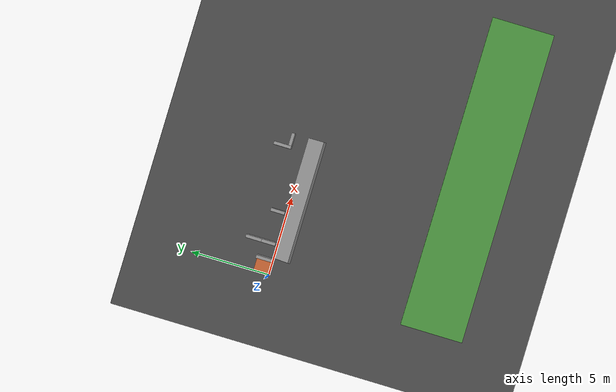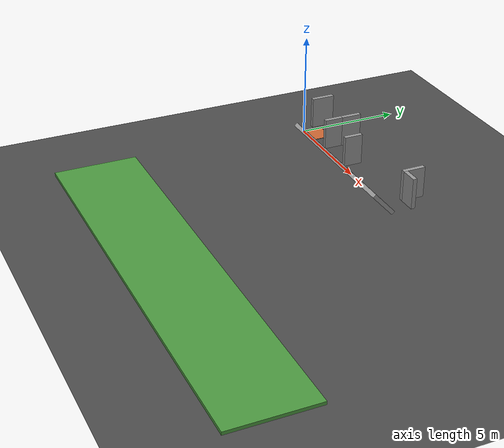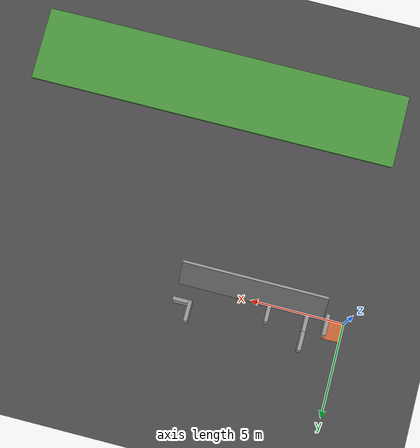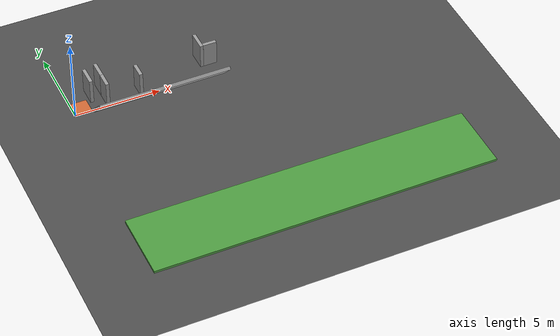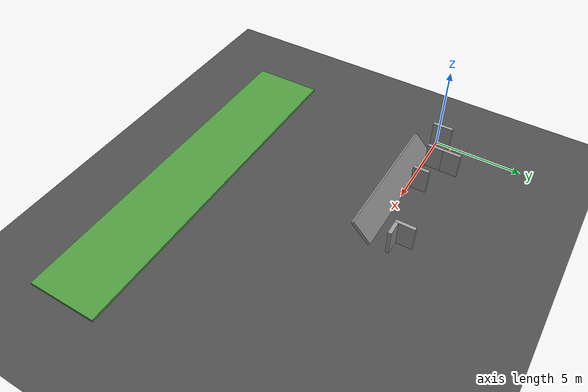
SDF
<sdf version="1.6">
 <world name="default">
  <model name="ground_plane">
   <static>1</static>
   <link name="link">
    <collision name="collision">
     <geometry><plane><normal>0 0 1</normal><size>20 20</size></plane></geometry>
     <surface><friction><ode><mu>100</mu><mu2>50</mu2></ode></friction></surface>
    </collision>
    <visual name="visual">
     <cast_shadows>0</cast_shadows>
     <geometry><plane><normal>0 0 1</normal><size>20 20</size></plane></geometry>
     <material>
      <script>
       <uri>model://asphalt_plane/materials/scripts</uri>
       <uri>model://asphalt_plane/materials/textures</uri>
       <name>vrc/asphalt</name>
      </script>
     </material>
    </visual>
   </link>
  </model>
  <model name="grey_8wall_2">
   <static>1</static>
   <link name="link">
    <pose>0 0 0.75 0 -0 0</pose>
    <inertial>
     <mass>20</mass>
     <inertia><ixx>1</ixx><ixy>0</ixy><ixz>0</ixz><iyy>1</iyy><iyz>0</iyz><izz>1</izz></inertia>
    </inertial>
    <visual name="ModelPreview_1::link::visual_1">
     <cast_shadows>0</cast_shadows>
     <geometry><box><size>7.8 0.2 1.5</size></box></geometry>
     <material>
      <script>
       <uri>model://grey_wall/materials/scripts</uri>
       <uri>model://grey_wall/materials/textures</uri>
       <name>vrc/grey_wall</name>
      </script>
      <ambient>1 1 1 1</ambient>
      <diffuse>1 1 1 1</diffuse>
      <specular>0 0 0 1</specular>
      <emissive>0 0 0 1</emissive>
      <shader type="vertex"><normal_map>__default__</normal_map></shader>
     </material>
    </visual>
    <collision name="collision">
     <geometry><box><size>8 0.2 1.5</size></box></geometry>
     <surface>
      <friction>
       <ode><mu>1</mu><mu2>1</mu2><fdir1>0 0 0</fdir1><slip1>0</slip1><slip2>0</slip2></ode>
       <torsional>
        <coefficient>1</coefficient>
        <patch_radius>0</patch_radius>
        <surface_radius>0</surface_radius>
        <use_patch_radius>1</use_patch_radius>
        <ode><slip>0</slip></ode>
       </torsional>
      </friction>
      <bounce><restitution_coefficient>0</restitution_coefficient><threshold>1e+06</threshold></bounce>
      <contact>
       <collide_without_contact>0</collide_without_contact>
       <collide_without_contact_bitmask>1</collide_without_contact_bitmask>
       <collide_bitmask>1</collide_bitmask>
       <ode>
        <soft_cfm>0</soft_cfm>
        <soft_erp>0.2</soft_erp>
        <kp>1e+13</kp>
        <kd>1</kd>
        <max_vel>0.01</max_vel>
        <min_depth>0</min_depth>
       </ode>
       <bullet>
        <split_impulse>1</split_impulse>
        <split_impulse_penetration_threshold>-0.01</split_impulse_penetration_threshold>
        <soft_cfm>0</soft_cfm>
        <soft_erp>0.2</soft_erp>
        <kp>1e+13</kp>
        <kd>1</kd>
       </bullet>
      </contact>
     </surface>
    </collision>
   </link>
   <static>1</static>
   <pose>5 0 0 0.75 -0 0</pose>
  </model>
  <model name="box_init">
   <static>1</static>
   <link name="link">
    <inertial>
     <mass>1</mass>
     <inertia>
      <ixx>0.166667</ixx>
      <ixy>0</ixy>
      <ixz>0</ixz>
      <iyy>0.166667</iyy>
      <iyz>0</iyz>
      <izz>0.166667</izz>
     </inertia>
    </inertial>
    <visual name="visual">
     <geometry><box><size>1 1 0.1</size></box></geometry>
     <material>
      <script><name>Gazebo/Grey</name><uri>file://media/materials/scripts/gazebo.material</uri></script>
      <ambient>1 0.5 0.2 1</ambient>
      <diffuse>0.8 0.4 0.2 1</diffuse>
      <specular>0.05 0.02 0.01 1</specular>
      <emissive>0 0 0 1</emissive>
      <shader type="vertex"><normal_map>__default__</normal_map></shader>
     </material>
    </visual>
    <collision name="collision">
     <geometry><box><size>1 1 0.1</size></box></geometry>
     <surface>
      <friction>
       <ode><mu>1</mu><mu2>1</mu2><fdir1>0 0 0</fdir1><slip1>0</slip1><slip2>0</slip2></ode>
       <torsional>
        <coefficient>1</coefficient>
        <patch_radius>0</patch_radius>
        <surface_radius>0</surface_radius>
        <use_patch_radius>1</use_patch_radius>
        <ode><slip>0</slip></ode>
       </torsional>
      </friction>
      <bounce><restitution_coefficient>0</restitution_coefficient><threshold>1e+06</threshold></bounce>
      <contact>
       <collide_without_contact>0</collide_without_contact>
       <collide_without_contact_bitmask>1</collide_without_contact_bitmask>
       <collide_bitmask>1</collide_bitmask>
       <ode>
        <soft_cfm>0</soft_cfm>
        <soft_erp>0.2</soft_erp>
        <kp>1e+13</kp>
        <kd>1</kd>
        <max_vel>0.01</max_vel>
        <min_depth>0</min_depth>
       </ode>
       <bullet>
        <split_impulse>1</split_impulse>
        <split_impulse_penetration_threshold>-0.01</split_impulse_penetration_threshold>
        <soft_cfm>0</soft_cfm>
        <soft_erp>0.2</soft_erp>
        <kp>1e+13</kp>
        <kd>1</kd>
       </bullet>
      </contact>
     </surface>
    </collision>
   </link>
   <static>0</static>
   <allow_auto_disable>0</allow_auto_disable>
   <pose>0.500000 0.500000 -0.04900 0.00000 0.00000 0.00000</pose>
  </model>
  <model name="unit_box_platform">
   <static>1</static>
   <link name="link">
    <pose>9.4118 -2.75754 0 0 -0 0</pose>
    <inertial>
     <mass>10</mass>
     <inertia>
      <ixx>0.166667</ixx>
      <ixy>0</ixy>
      <ixz>0</ixz>
      <iyy>0.166667</iyy>
      <iyz>0</iyz>
      <izz>0.166667</izz>
     </inertia>
    </inertial>
    <visual name="visual">
     <cast_shadows>0</cast_shadows>
     <geometry><box><size>20 4 0.25</size></box></geometry>
     <material>
      <script><name>Gazebo/Grass</name><uri>file://media/materials/textures/gazebo.material</uri></script>
      <ambient>0.3 0.3 0.3 1</ambient>
      <diffuse>0.7 0.7 0.7 1</diffuse>
      <specular>0.01 0.01 0.01 1</specular>
      <emissive>0 0 0 1</emissive>
      <shader type="vertex"><normal_map>__default__</normal_map></shader>
     </material>
     <cast_shadows>0</cast_shadows>
    </visual>
    <collision name="collision">
     <geometry><box><size>20 4 0.25</size></box></geometry>
     <surface>
      <friction>
       <ode><mu>1</mu><mu2>1</mu2><fdir1>0 0 0</fdir1><slip1>0</slip1><slip2>0</slip2></ode>
       <torsional>
        <coefficient>1</coefficient>
        <patch_radius>0</patch_radius>
        <surface_radius>0</surface_radius>
        <use_patch_radius>1</use_patch_radius>
        <ode><slip>0</slip></ode>
       </torsional>
      </friction>
      <bounce><restitution_coefficient>0</restitution_coefficient><threshold>1e+06</threshold></bounce>
      <contact>
       <collide_without_contact>0</collide_without_contact>
       <collide_without_contact_bitmask>1</collide_without_contact_bitmask>
       <collide_bitmask>1</collide_bitmask>
       <ode>
        <soft_cfm>0</soft_cfm>
        <soft_erp>0.2</soft_erp>
        <kp>1e+13</kp>
        <kd>1</kd>
        <max_vel>0.01</max_vel>
        <min_depth>0</min_depth>
       </ode>
       <bullet>
        <split_impulse>1</split_impulse>
        <split_impulse_penetration_threshold>-0.01</split_impulse_penetration_threshold>
        <soft_cfm>0</soft_cfm>
        <soft_erp>0.2</soft_erp>
        <kp>1e+13</kp>
        <kd>1</kd>
       </bullet>
      </contact>
     </surface>
    </collision>
   </link>
   <static>0</static>
   <pose>0 -8 0.001 0 -0 0</pose>
  </model>
  <model name="grey_1wall_90_clone_3">
   <static>1</static>
   <link name="link">
    <pose>0 0 0.75 0 -0 0</pose>
    <inertial>
     <mass>5</mass>
     <inertia><ixx>1</ixx><ixy>0</ixy><ixz>0</ixz><iyy>1</iyy><iyz>0</iyz><izz>1</izz></inertia>
    </inertial>
    <visual name="ModelPreview_1::link::visual_1">
     <cast_shadows>0</cast_shadows>
     <geometry><box><size>1.1 0.2 1.5</size></box></geometry>
     <material>
      <script>
       <uri>model://grey_wall/materials/scripts</uri>
       <uri>model://grey_wall/materials/textures</uri>
       <name>vrc/grey_wall</name>
      </script>
      <ambient>1 1 1 1</ambient>
      <diffuse>1 1 1 1</diffuse>
      <specular>0 0 0 1</specular>
      <emissive>0 0 0 1</emissive>
      <shader type="vertex"><normal_map>__default__</normal_map></shader>
     </material>
    </visual>
    <collision name="collision">
     <geometry><box><size>1.1 0.2 1.5</size></box></geometry>
     <surface>
      <friction>
       <ode><mu>1</mu><mu2>1</mu2><fdir1>0 0 0</fdir1><slip1>0</slip1><slip2>0</slip2></ode>
       <torsional>
        <coefficient>1</coefficient>
        <patch_radius>0</patch_radius>
        <surface_radius>0</surface_radius>
        <use_patch_radius>1</use_patch_radius>
        <ode><slip>0</slip></ode>
       </torsional>
      </friction>
      <bounce><restitution_coefficient>0</restitution_coefficient><threshold>1e+06</threshold></bounce>
      <contact>
       <collide_without_contact>0</collide_without_contact>
       <collide_without_contact_bitmask>1</collide_without_contact_bitmask>
       <collide_bitmask>1</collide_bitmask>
       <ode>
        <soft_cfm>0</soft_cfm>
        <soft_erp>0.2</soft_erp>
        <kp>1e+13</kp>
        <kd>1</kd>
        <max_vel>0.01</max_vel>
        <min_depth>0</min_depth>
       </ode>
       <bullet>
        <split_impulse>1</split_impulse>
        <split_impulse_penetration_threshold>-0.01</split_impulse_penetration_threshold>
        <soft_cfm>0</soft_cfm>
        <soft_erp>0.2</soft_erp>
        <kp>1e+13</kp>
        <kd>1</kd>
       </bullet>
      </contact>
     </surface>
    </collision>
   </link>
   <static>1</static>
   <pose>1.0000 0.450000 0.75 0 0 1.57</pose>
  </model>
  <model name="grey_1wall_90_clone_2_clone">
   <static>1</static>
   <link name="link">
    <pose>0 0 0.75 0 -0 0</pose>
    <inertial>
     <mass>5</mass>
     <inertia><ixx>1</ixx><ixy>0</ixy><ixz>0</ixz><iyy>1</iyy><iyz>0</iyz><izz>1</izz></inertia>
    </inertial>
    <visual name="ModelPreview_1::link::visual_1">
     <cast_shadows>0</cast_shadows>
     <geometry><box><size>0.9 0.2 1.5</size></box></geometry>
     <material>
      <script>
       <uri>model://grey_wall/materials/scripts</uri>
       <uri>model://grey_wall/materials/textures</uri>
       <name>vrc/grey_wall</name>
      </script>
      <ambient>1 1 1 1</ambient>
      <diffuse>1 1 1 1</diffuse>
      <specular>0 0 0 1</specular>
      <emissive>0 0 0 1</emissive>
      <shader type="vertex"><normal_map>__default__</normal_map></shader>
     </material>
    </visual>
    <collision name="collision">
     <geometry><box><size>0.9 0.2 1.5</size></box></geometry>
     <surface>
      <friction>
       <ode><mu>1</mu><mu2>1</mu2><fdir1>0 0 0</fdir1><slip1>0</slip1><slip2>0</slip2></ode>
       <torsional>
        <coefficient>1</coefficient>
        <patch_radius>0</patch_radius>
        <surface_radius>0</surface_radius>
        <use_patch_radius>1</use_patch_radius>
        <ode><slip>0</slip></ode>
       </torsional>
      </friction>
      <bounce><restitution_coefficient>0</restitution_coefficient><threshold>1e+06</threshold></bounce>
      <contact>
       <collide_without_contact>0</collide_without_contact>
       <collide_without_contact_bitmask>1</collide_without_contact_bitmask>
       <collide_bitmask>1</collide_bitmask>
       <ode>
        <soft_cfm>0</soft_cfm>
        <soft_erp>0.2</soft_erp>
        <kp>1e+13</kp>
        <kd>1</kd>
        <max_vel>0.01</max_vel>
        <min_depth>0</min_depth>
       </ode>
       <bullet>
        <split_impulse>1</split_impulse>
        <split_impulse_penetration_threshold>-0.01</split_impulse_penetration_threshold>
        <soft_cfm>0</soft_cfm>
        <soft_erp>0.2</soft_erp>
        <kp>1e+13</kp>
        <kd>1</kd>
       </bullet>
      </contact>
     </surface>
    </collision>
   </link>
   <static>1</static>
   <pose>2 0.55 0 0 -0 1.57</pose>
  </model>
  <model name="grey_1wall_90_clone_2_clone_0">
   <static>1</static>
   <link name="link">
    <pose>0 0 0.75 0 -0 0</pose>
    <inertial>
     <mass>5</mass>
     <inertia><ixx>1</ixx><ixy>0</ixy><ixz>0</ixz><iyy>1</iyy><iyz>0</iyz><izz>1</izz></inertia>
    </inertial>
    <visual name="ModelPreview_1::link::visual_1">
     <cast_shadows>0</cast_shadows>
     <geometry><box><size>1 0.2 1.5</size></box></geometry>
     <material>
      <script>
       <uri>model://grey_wall/materials/scripts</uri>
       <uri>model://grey_wall/materials/textures</uri>
       <name>vrc/grey_wall</name>
      </script>
      <ambient>1 1 1 1</ambient>
      <diffuse>1 1 1 1</diffuse>
      <specular>0 0 0 1</specular>
      <emissive>0 0 0 1</emissive>
      <shader type="vertex"><normal_map>__default__</normal_map></shader>
     </material>
    </visual>
    <collision name="collision">
     <geometry><box><size>1 0.2 1.5</size></box></geometry>
     <surface>
      <friction>
       <ode><mu>1</mu><mu2>1</mu2><fdir1>0 0 0</fdir1><slip1>0</slip1><slip2>0</slip2></ode>
       <torsional>
        <coefficient>1</coefficient>
        <patch_radius>0</patch_radius>
        <surface_radius>0</surface_radius>
        <use_patch_radius>1</use_patch_radius>
        <ode><slip>0</slip></ode>
       </torsional>
      </friction>
      <bounce><restitution_coefficient>0</restitution_coefficient><threshold>1e+06</threshold></bounce>
      <contact>
       <collide_without_contact>0</collide_without_contact>
       <collide_without_contact_bitmask>1</collide_without_contact_bitmask>
       <collide_bitmask>1</collide_bitmask>
       <ode>
        <soft_cfm>0</soft_cfm>
        <soft_erp>0.2</soft_erp>
        <kp>1e+13</kp>
        <kd>1</kd>
        <max_vel>0.01</max_vel>
        <min_depth>0</min_depth>
       </ode>
       <bullet>
        <split_impulse>1</split_impulse>
        <split_impulse_penetration_threshold>-0.01</split_impulse_penetration_threshold>
        <soft_cfm>0</soft_cfm>
        <soft_erp>0.2</soft_erp>
        <kp>1e+13</kp>
        <kd>1</kd>
       </bullet>
      </contact>
     </surface>
    </collision>
   </link>
   <static>1</static>
   <pose>2 1.5 0 0 -0 1.57</pose>
  </model>
  <model name="grey_1wall_90_clone_2_clone_1">
   <static>1</static>
   <link name="link">
    <pose>0 0 0.75 0 -0 0</pose>
    <inertial>
     <mass>5</mass>
     <inertia><ixx>1</ixx><ixy>0</ixy><ixz>0</ixz><iyy>1</iyy><iyz>0</iyz><izz>1</izz></inertia>
    </inertial>
    <visual name="ModelPreview_1::link::visual_1">
     <cast_shadows>0</cast_shadows>
     <geometry><box><size>0.9 0.2 1.5</size></box></geometry>
     <material>
      <script>
       <uri>model://grey_wall/materials/scripts</uri>
       <uri>model://grey_wall/materials/textures</uri>
       <name>vrc/grey_wall</name>
      </script>
      <ambient>1 1 1 1</ambient>
      <diffuse>1 1 1 1</diffuse>
      <specular>0 0 0 1</specular>
      <emissive>0 0 0 1</emissive>
      <shader type="vertex"><normal_map>__default__</normal_map></shader>
     </material>
    </visual>
    <collision name="collision">
     <geometry><box><size>0.9 0.2 1.5</size></box></geometry>
     <surface>
      <friction>
       <ode><mu>1</mu><mu2>1</mu2><fdir1>0 0 0</fdir1><slip1>0</slip1><slip2>0</slip2></ode>
       <torsional>
        <coefficient>1</coefficient>
        <patch_radius>0</patch_radius>
        <surface_radius>0</surface_radius>
        <use_patch_radius>1</use_patch_radius>
        <ode><slip>0</slip></ode>
       </torsional>
      </friction>
      <bounce><restitution_coefficient>0</restitution_coefficient><threshold>1e+06</threshold></bounce>
      <contact>
       <collide_without_contact>0</collide_without_contact>
       <collide_without_contact_bitmask>1</collide_without_contact_bitmask>
       <collide_bitmask>1</collide_bitmask>
       <ode>
        <soft_cfm>0</soft_cfm>
        <soft_erp>0.2</soft_erp>
        <kp>1e+13</kp>
        <kd>1</kd>
        <max_vel>0.01</max_vel>
        <min_depth>0</min_depth>
       </ode>
       <bullet>
        <split_impulse>1</split_impulse>
        <split_impulse_penetration_threshold>-0.01</split_impulse_penetration_threshold>
        <soft_cfm>0</soft_cfm>
        <soft_erp>0.2</soft_erp>
        <kp>1e+13</kp>
        <kd>1</kd>
       </bullet>
      </contact>
     </surface>
    </collision>
   </link>
   <static>1</static>
   <pose>4 0.55 0 0 -0 1.57</pose>
  </model>
  <model name="grey_1wall_90_clone_2_clone_10">
   <static>1</static>
   <link name="link">
    <pose>0 0 0.75 0 -0 0</pose>
    <inertial>
     <mass>5</mass>
     <inertia><ixx>1</ixx><ixy>0</ixy><ixz>0</ixz><iyy>1</iyy><iyz>0</iyz><izz>1</izz></inertia>
    </inertial>
    <visual name="ModelPreview_1::link::visual_1">
     <cast_shadows>0</cast_shadows>
     <geometry><box><size>1.1 0.2 1.5</size></box></geometry>
     <material>
      <script>
       <uri>model://grey_wall/materials/scripts</uri>
       <uri>model://grey_wall/materials/textures</uri>
       <name>vrc/grey_wall</name>
      </script>
      <ambient>1 1 1 1</ambient>
      <diffuse>1 1 1 1</diffuse>
      <specular>0 0 0 1</specular>
      <emissive>0 0 0 1</emissive>
      <shader type="vertex"><normal_map>__default__</normal_map></shader>
     </material>
    </visual>
    <collision name="collision">
     <geometry><box><size>1.1 0.2 1.5</size></box></geometry>
     <surface>
      <friction>
       <ode><mu>1</mu><mu2>1</mu2><fdir1>0 0 0</fdir1><slip1>0</slip1><slip2>0</slip2></ode>
       <torsional>
        <coefficient>1</coefficient>
        <patch_radius>0</patch_radius>
        <surface_radius>0</surface_radius>
        <use_patch_radius>1</use_patch_radius>
        <ode><slip>0</slip></ode>
       </torsional>
      </friction>
      <bounce><restitution_coefficient>0</restitution_coefficient><threshold>1e+06</threshold></bounce>
      <contact>
       <collide_without_contact>0</collide_without_contact>
       <collide_without_contact_bitmask>1</collide_without_contact_bitmask>
       <collide_bitmask>1</collide_bitmask>
       <ode>
        <soft_cfm>0</soft_cfm>
        <soft_erp>0.2</soft_erp>
        <kp>1e+13</kp>
        <kd>1</kd>
        <max_vel>0.01</max_vel>
        <min_depth>0</min_depth>
       </ode>
       <bullet>
        <split_impulse>1</split_impulse>
        <split_impulse_penetration_threshold>-0.01</split_impulse_penetration_threshold>
        <soft_cfm>0</soft_cfm>
        <soft_erp>0.2</soft_erp>
        <kp>1e+13</kp>
        <kd>1</kd>
       </bullet>
      </contact>
     </surface>
    </collision>
   </link>
   <static>1</static>
   <pose>8 1.45 0 0 -0 1.57</pose>
  </model>
  <model name="grey_1wall_clone_clone_0">
   <static>1</static>
   <link name="link">
    <pose>0 0 0.75 0 -0 0</pose>
    <inertial>
     <mass>5</mass>
     <inertia><ixx>1</ixx><ixy>0</ixy><ixz>0</ixz><iyy>1</iyy><iyz>0</iyz><izz>1</izz></inertia>
    </inertial>
    <visual name="ModelPreview_1::link::visual_1">
     <cast_shadows>0</cast_shadows>
     <geometry><box><size>0.8 0.2 1.5</size></box></geometry>
     <material>
      <script>
       <uri>model://grey_wall/materials/scripts</uri>
       <uri>model://grey_wall/materials/textures</uri>
       <name>vrc/grey_wall</name>
      </script>
      <ambient>1 1 1 1</ambient>
      <diffuse>1 1 1 1</diffuse>
      <specular>0 0 0 1</specular>
      <emissive>0 0 0 1</emissive>
      <shader type="vertex"><normal_map>__default__</normal_map></shader>
     </material>
    </visual>
    <collision name="collision">
     <geometry><box><size>0.8 0.2 1.5</size></box></geometry>
     <surface>
      <friction>
       <ode><mu>1</mu><mu2>1</mu2><fdir1>0 0 0</fdir1><slip1>0</slip1><slip2>0</slip2></ode>
       <torsional>
        <coefficient>1</coefficient>
        <patch_radius>0</patch_radius>
        <surface_radius>0</surface_radius>
        <use_patch_radius>1</use_patch_radius>
        <ode><slip>0</slip></ode>
       </torsional>
      </friction>
      <bounce><restitution_coefficient>0</restitution_coefficient><threshold>1e+06</threshold></bounce>
      <contact>
       <collide_without_contact>0</collide_without_contact>
       <collide_without_contact_bitmask>1</collide_without_contact_bitmask>
       <collide_bitmask>1</collide_bitmask>
       <ode>
        <soft_cfm>0</soft_cfm>
        <soft_erp>0.2</soft_erp>
        <kp>1e+13</kp>
        <kd>1</kd>
        <max_vel>0.01</max_vel>
        <min_depth>0</min_depth>
       </ode>
       <bullet>
        <split_impulse>1</split_impulse>
        <split_impulse_penetration_threshold>-0.01</split_impulse_penetration_threshold>
        <soft_cfm>0</soft_cfm>
        <soft_erp>0.2</soft_erp>
        <kp>1e+13</kp>
        <kd>1</kd>
       </bullet>
      </contact>
     </surface>
    </collision>
   </link>
   <static>1</static>
   <pose>8.5 1 0 0 -0 0</pose>
  </model>
 </world>
</sdf>
